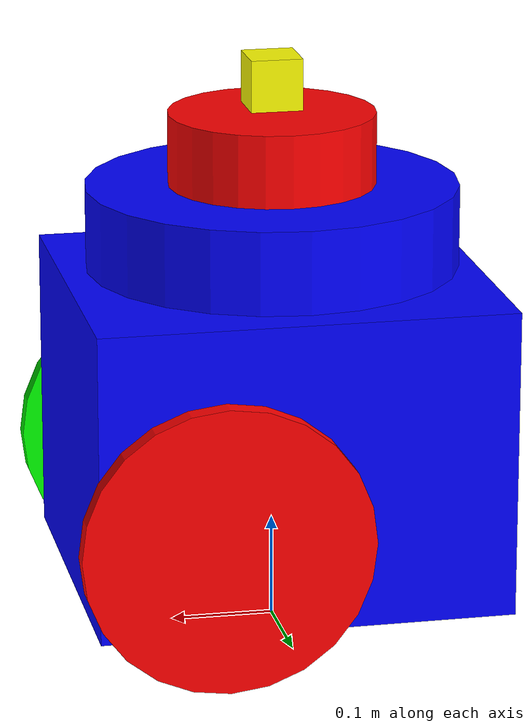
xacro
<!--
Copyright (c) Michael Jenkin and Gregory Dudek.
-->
<?xml version="1.0"?>

<robot name="$(arg name)" xmlns:xacro="http://www.ros.org/wiki/xacro">

  <!-- Define the robot -->
  <xacro:property name="robot_base_width" value="0.36" />
  <xacro:property name="robot_base_length" value="0.4" />
  <xacro:property name="robot_base_height" value="0.3" />
  <xacro:property name="robot_base_mass" value="4.5" />
  <xacro:property name="robot_sonar_radius" value="0.18" />
  <xacro:property name="robot_sonar_height" value="0.08" />
  <xacro:property name="robot_wheel_zoffset" value="-0.06" />
  <xacro:property name="robot_wheel_xoffset" value="0.08" />
  <xacro:property name="robot_wheel_radius" value="0.14" />
  <xacro:property name="robot_wheel_width" value="0.02" />
  <xacro:property name="robot_caster_link_height" value="0.03" />
  <xacro:property name="robot_caster_link_width" value="0.03" />
  <xacro:property name="robot_caster_link_length" value="0.05" />
  <xacro:property name="robot_caster_link_offset" value="-0.025" />
  <xacro:property name="robot_caster_joint_offset" value="-0.15" />
  <xacro:property name="robot_caster_wheel_radius" value="0.02" />
  <xacro:property name="robot_laser_radius" value="0.1" />
  <xacro:property name="robot_laser_height" value="0.08" />

  <!-- Import colors defined externally -->
  <xacro:include filename="$(find cpmr_ch4)/colors.xacro" />

  <!-- Define macros to make moments of inertia easier -->
  <xacro:macro name="I_cylinder" params="m r h">
    <inertial>
      <mass value="${m}" />
      <inertia  ixx="${m*(3*r*r+h*h)/12}" iyy="${m*(3*r*r+h*h)/12}" izz="${m*r*r/2}"
              ixy = "0" ixz = "0" iyz = "0" />
    </inertial>
  </xacro:macro>
  <xacro:macro name="I_cuboid" params="m x y z">
    <inertial>
      <mass value="${m}" />
      <inertia  ixx="${m*(y*y+z*z)/12}" iyy="${m*(x*x+z*z)/12}" izz="${m*(x*x+z*z)/12}"
                ixy = "0" ixz = "0" iyz = "0" />
    </inertial>
  </xacro:macro>

  <!-- robot footprint -->
  <link name="base_footprint">
  </link>

  <!-- Base -->
  <gazebo reference="base_link">
    <material>Gazebo/Blue</material>
  </gazebo>
  <link name="base_link">
    <visual>
      <geometry>
        <box size="${robot_base_length} ${robot_base_width} ${robot_base_height}" />
      </geometry>
      <material name="blue"/>
    </visual>
    <collision>
      <geometry>
        <box size="${robot_base_length} ${robot_base_width} ${robot_base_height}" />
      </geometry>
    </collision>
    <xacro:I_cuboid m="8.4" x="${robot_base_length}" y="${robot_base_width}" z="${robot_base_height}" />
  </link>

  <!-- Sonar unit -->
  <gazebo reference="sonar_link">
    <material>Gazebo/Blue</material>
  </gazebo>
  <link name="sonar_link">
    <visual>
      <geometry>
        <cylinder length="${robot_sonar_height}" radius="${robot_sonar_radius}" />
      </geometry>
      <material name="blue"/>
    </visual>
    <collision>
      <geometry>
        <cylinder length="${robot_sonar_height}" radius="${robot_sonar_radius}" />
      </geometry>
    </collision>
    <xacro:I_cylinder m="8.4" r="${robot_sonar_radius}" h="${robot_sonar_height}" />
  </link>

  <joint name="base_joint" type="fixed">
    <origin xyz="0.0 0.0 ${robot_wheel_radius-robot_wheel_zoffset}" rpy="0.0 0.0 0.0" />
    <parent link="base_footprint" />
    <child link="base_link" />
    <axis xyz="0 0 1" />
  </joint>

  <joint name="sonar_joint" type="fixed">
    <!-- Raise sonar 1 cm (0.01 m) higher than before -->
    <origin xyz="0.0 0.0 ${robot_base_height/2 + robot_sonar_height/2 + 0.01}" rpy="0.0 0.0 0.0" />
    <parent link="base_link" />
    <child link="sonar_link" />
    <axis xyz="0 0 1" />
  </joint>

  <gazebo reference="sonar_link">
    <sensor type="ray" name="sonar">
      <pose>0 0 0 0 0 0</pose>
      <visualize>true</visualize>
      <update_rate>10</update_rate>
      <ray>
        <scan>
          <horizontal>
            <samples>9</samples>
            <resolution>1</resolution>
            <min_angle>-0.1309</min_angle>
            <max_angle>0.1309</max_angle>
          </horizontal>
          <vertical>
            <samples>9</samples>
            <resolution>1</resolution>
            <min_angle>-0.1309</min_angle>
            <max_angle>0.1309</max_angle>
          </vertical>
        </scan>
        <range>
          <min>${robot_sonar_radius+0.1}</min>
          <max>${robot_sonar_radius+5}</max>
          <resolution>0.01</resolution>
        </range>
      </ray>
      <plugin name="sonar_plugin" filename="libgazebo_ros_ray_sensor.so">
        <frame_name>sonar_link</frame_name>
        <updateRate>10</updateRate>
        <radiation>ultrasound</radiation>
        <output_type>sensor_msgs/Range</output_type>
        <ros>
          <remapping>~/out:=sonar</remapping>
        </ros>
      </plugin>
    </sensor>
  </gazebo>

  <!-- Sonar unit -->
  <gazebo reference="laser_link">
    <material>Gazebo/Red</material>
  </gazebo>
  <link name="laser_link">
    <visual>
      <geometry>
        <cylinder length="${robot_laser_height}" radius="${robot_laser_radius}" />
      </geometry>
      <material name="red"/>
    </visual>
    <collision>
      <geometry>
        <cylinder length="${robot_laser_height}" radius="${robot_laser_radius}" />
      </geometry>
    </collision>
    <xacro:I_cylinder m="0.1" r="${robot_laser_radius}" h="${robot_laser_height}" />
  </link>

  <joint name="laser_joint" type="fixed">
  <!-- Lower lidar 1 cm so it stays in the same world position -->
  <origin xyz="0.0 0.0 ${robot_sonar_height/2 + robot_laser_height/2 - 0.01}" rpy="0.0 0.0 0.0" />
    <parent link="sonar_link" />
    <child link="laser_link" />
    <axis xyz="0 0 1" />
  </joint>

  <gazebo reference="laser_link">
    <static>true</static>
    <sensor type="ray" name="laser">
      <pose>0 0 0 0 0 0</pose>
      <visualize>true</visualize>
      <update_rate>10</update_rate>
      <ray>
        <scan>
          <horizontal>
            <samples>360</samples>
            <resolution>1</resolution>
            <min_angle>-3.1415</min_angle>
            <max_angle>3.1240</max_angle>
          </horizontal>
        </scan>
        <range>
          <min>0.20</min>
          <max>10.0</max>
          <resolution>0.01</resolution>
        </range>
      </ray>
      <plugin name="laser_controller" filename="libgazebo_ros_ray_sensor.so">
        <ros>
          <namespace>/</namespace>
          <remapping>~/out:=scan</remapping>
        </ros>
        <frameName>laser_link</frameName>
        <output_type>sensor_msgs/LaserScan</output_type>
      </plugin>
    </sensor>
  </gazebo>

<!-- ===================== SENSOR VISUAL CUE ===================== -->
<link name="sensor_marker_link">
  <visual>
    <geometry>
      <!-- A small cube (5 cm per side) -->
      <box size="0.05 0.05 0.05"/>
    </geometry>
    <!-- Bright yellow to stand out -->
    <material name="yellow"/>
  </visual>
  <collision>
    <geometry>
      <box size="0.05 0.05 0.05"/>
    </geometry>
  </collision>
</link>

<joint name="sensor_marker_joint" type="fixed">
  <!-- Attach marker to sonar link, above both sensors -->
  <parent link="sonar_link"/>
  <child link="sensor_marker_link"/>
  <!-- Offset slightly above the sonar top -->
  <origin xyz="0 0 ${robot_sonar_height/2 + 0.1}" rpy="0 0 0"/>
</joint>

  <!-- Left wheel -->
  <gazebo reference="left_wheel_link">
    <material>Gazebo/Red</material>
  </gazebo>
  <link name="left_wheel_link">
    <visual>
      <geometry>
        <cylinder length="${robot_wheel_width}" radius="${robot_wheel_radius}" />
      </geometry>
      <material name="red" />
    </visual>
    <collision>
      <geometry>
        <cylinder length="${robot_wheel_width}" radius="${robot_wheel_radius}" />
      </geometry>
    </collision>
    <xacro:I_cylinder m="0.1" r="${robot_wheel_radius}" h="${robot_wheel_width}" />
  </link>

  <joint name="left_wheel_joint" type="continuous">
    <axis xyz="0 0 1" />
    <parent link="base_link" />
    <child link="left_wheel_link" />
    <origin rpy="-1.5708 0 0" xyz="${robot_wheel_xoffset} ${robot_base_width/2+robot_wheel_width/2} ${robot_wheel_zoffset}" />
  </joint>

  <!-- Right wheel -->
  <gazebo reference="right_wheel_link">
    <material>Gazebo/Green</material>
  </gazebo>
  <link name="right_wheel_link">
    <visual>
      <geometry>
        <cylinder length="${robot_wheel_width}" radius="${robot_wheel_radius}" />
      </geometry>
      <material name="green" />
    </visual>
    <collision>
      <geometry>
        <cylinder length="${robot_wheel_width}" radius="${robot_wheel_radius}" />
      </geometry>
    </collision>
    <xacro:I_cylinder m="0.1" r="${robot_wheel_radius}" h="${robot_wheel_width}" />
  </link>

  <joint name="right_wheel_joint" type="continuous">
    <axis xyz="0 0 1" />
    <parent link="base_link" />
    <child link="right_wheel_link" />
    <origin rpy="-1.5708 0 0" xyz="${robot_wheel_xoffset} ${-robot_base_width/2-robot_wheel_width/2} ${robot_wheel_zoffset}" />
  </joint>

  <!-- Caster 'wheel' structure -->
  <gazebo reference="caster_link">
    <material>Gazebo/Silver</material>
  </gazebo>

  <link name="caster_link">
    <visual>
      <origin xyz="${robot_caster_link_length/2} 0 0" rpy="0 0 0" />
      <geometry>
        <box size="${robot_caster_link_length} ${robot_caster_link_width} ${robot_caster_link_height}" />
      </geometry>
      <material name="silver"/>
    </visual>
    <collision>
      <origin xyz="${robot_caster_link_length/2} 0 0" rpy="0 0 0" />
      <geometry>
        <box size="${robot_caster_link_length} ${robot_caster_link_width} ${robot_caster_link_height}" />
      </geometry>
    </collision>
    <xacro:I_cuboid m="0.1" x="${robot_caster_link_length}" y="${robot_caster_link_width}" z="${robot_caster_link_height}" />
  </link>

  <joint name="caster_joint" type="continuous">
    <axis xyz="0 0 1" />
    <parent link="base_link" />
    <child link="caster_link" />
    <origin rpy="0 0 3.1415" xyz="${robot_caster_joint_offset} 0 ${-robot_base_height/2-robot_caster_link_height/2}" />
  </joint>

  <!-- caster wheel -->
  <gazebo reference="caster_wheel_link">
    <material>Gazebo/Silver</material>
  </gazebo>
  <link name="caster_wheel_link">
    <visual>
      <geometry>
        <cylinder length="${robot_caster_link_height}" radius="${robot_caster_wheel_radius}" />
      </geometry>
      <material name="silver" />
    </visual>
    <collision>
      <geometry>
        <cylinder length="${robot_caster_link_height}" radius="${robot_caster_wheel_radius}" />
      </geometry>
    </collision>
    <xacro:I_cylinder m="0.1" r="${robot_caster_wheel_radius}" h="${robot_caster_link_height}" />
  </link>

  <joint name="caster_wheel_joint" type="continuous">
    <axis xyz="0 0 1" />
    <child link="caster_wheel_link" />
    <parent link="caster_link" />
    <origin rpy="1.5708 0 0" xyz="${robot_caster_link_length} 0 ${-robot_caster_link_height/2}" />
  </joint>

  <gazebo>
    <plugin name="joint_state_publisher" filename="libgazebo_ros_joint_state_publisher.so">
      <joint_name>caster_wheel_joint</joint_name>
      <joint_name>caster_joint</joint_name>
      <joint_name>left_wheel_joint</joint_name>
      <joint_name>right_wheel_joint</joint_name>
    </plugin>
  </gazebo>

  <gazebo>
    <plugin name="differential_drive_controller" filename="libgazebo_ros_diff_drive.so">
      <update_rate>20</update_rate>
      <left_joint>left_wheel_joint</left_joint>
      <right_joint>right_wheel_joint</right_joint>
      <robotBaseFrame>base_footprint</robotBaseFrame>
      <wheel_separation>${robot_base_width+robot_wheel_width}</wheel_separation>
      <wheel_diameter>${2*robot_wheel_radius}</wheel_diameter>
      <publish_odom>true</publish_odom>
      <publish_odom_tf>true</publish_odom_tf>
      <publish_wheel_tf>true</publish_wheel_tf>
      <odometry_frame>odom</odometry_frame>
      <robot_base_frame>base_footprint</robot_base_frame>
      <command_topic>cmd_vel</command_topic>
    </plugin>
  </gazebo>
</robot>

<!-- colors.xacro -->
<robot>
  <material name="red">
    <color rgba="1 0 0 1"/>
  </material>
  <material name="green">
    <color rgba="0 1 0 1"/>
  </material>
  <material name="blue">
    <color rgba="0 0 1 1"/>
  </material>
  <material name="black">
    <color rgba="0 0 0 1"/>
  </material>
  <material name="silver">
    <color rgba="0.8 0.8 0.8 1"/>
  </material>
  <material name="grey">
    <color rgba="0.5 0.5 0.5 1"/>
  </material>
  <material name="yellow">
    <color rgba="1 1 0 1"/>
  </material>
</robot>
